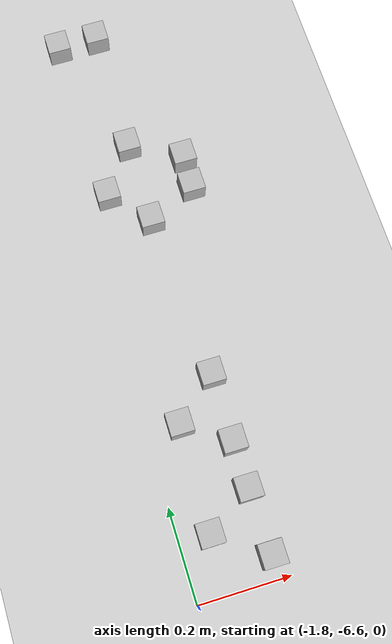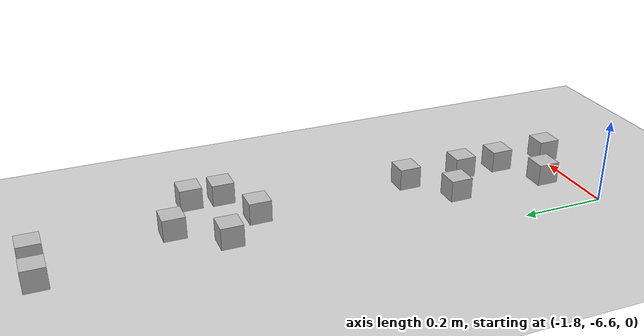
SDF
<sdf version="1.6">
 <world name="default">
  <model name="ground_plane">
   <static>1</static>
   <link name="link">
    <collision name="collision">
     <geometry><plane><normal>0 0 1</normal><size>100 100</size></plane></geometry>
     <surface><friction><ode><mu>100</mu><mu2>50</mu2></ode></friction></surface>
    </collision>
    <visual name="visual">
     <cast_shadows>0</cast_shadows>
     <geometry><plane><normal>0 0 1</normal><size>100 100</size></plane></geometry>
     <material>
      <script><uri>file://media/materials/scripts/gazebo.material</uri><name>Gazebo/Grey</name></script>
     </material>
    </visual>
   </link>
  </model>
  <model name="at0">
   <static>0</static>
   <link name="link">
    <inertial>
     <mass>0.01</mass>
     <inertia><ixx>4e-05</ixx><ixy>0</ixy><ixz>0</ixz><iyy>4e-05</iyy><iyz>0</iyz><izz>4e-05</izz></inertia>
    </inertial>
    <visual name="visual">
     <geometry><box><size>0.05 0.05 0.05</size></box></geometry>
     <material>
      <script>
       <uri>model://at0/materials/scripts</uri>
       <uri>model://at0/materials/textures</uri>
       <name>at0/Diffuse</name>
      </script>
     </material>
    </visual>
    <collision name="collision">
     <geometry><box><size>0.05 0.05 0.05</size></box></geometry>
     <surface><friction><ode><mu>0.8</mu><mu2>0.7</mu2></ode></friction></surface>
    </collision>
   </link>
   <pose>-1.73722 -6.47551 0.074995 3.5e-05 -9e-06 -1.8e-05</pose>
  </model>
  <model name="at0_clone">
   <static>0</static>
   <link name="link">
    <inertial>
     <mass>0.01</mass>
     <inertia><ixx>4e-05</ixx><ixy>0</ixy><ixz>0</ixz><iyy>4e-05</iyy><iyz>0</iyz><izz>4e-05</izz></inertia>
    </inertial>
    <visual name="visual">
     <geometry><box><size>0.05 0.05 0.05</size></box></geometry>
     <material>
      <script>
       <uri>model://at0/materials/scripts</uri>
       <uri>model://at0/materials/textures</uri>
       <name>at0/Diffuse</name>
      </script>
     </material>
    </visual>
    <collision name="collision">
     <geometry><box><size>0.05 0.05 0.05</size></box></geometry>
     <surface><friction><ode><mu>0.8</mu><mu2>0.7</mu2></ode></friction></surface>
    </collision>
   </link>
   <pose>-1.63322 -6.54725 0.074994 -3.5e-05 9e-06 -1.9e-05</pose>
  </model>
  <model name="at0_clone_clone_0">
   <static>0</static>
   <link name="link">
    <inertial>
     <mass>0.01</mass>
     <inertia><ixx>4e-05</ixx><ixy>0</ixy><ixz>0</ixz><iyy>4e-05</iyy><iyz>0</iyz><izz>4e-05</izz></inertia>
    </inertial>
    <visual name="visual">
     <geometry><box><size>0.05 0.05 0.05</size></box></geometry>
     <material>
      <script>
       <uri>model://at0/materials/scripts</uri>
       <uri>model://at0/materials/textures</uri>
       <name>at0/Diffuse</name>
      </script>
     </material>
    </visual>
    <collision name="collision">
     <geometry><box><size>0.05 0.05 0.05</size></box></geometry>
     <surface><friction><ode><mu>0.8</mu><mu2>0.7</mu2></ode></friction></surface>
    </collision>
   </link>
   <pose>-1.63786 -6.41293 0.074995 -3.6e-05 -1.3e-05 -2.4e-05</pose>
  </model>
  <model name="at0_clone_clone_2">
   <static>0</static>
   <link name="link">
    <inertial>
     <mass>0.01</mass>
     <inertia><ixx>4e-05</ixx><ixy>0</ixy><ixz>0</ixz><iyy>4e-05</iyy><iyz>0</iyz><izz>4e-05</izz></inertia>
    </inertial>
    <visual name="visual">
     <geometry><box><size>0.05 0.05 0.05</size></box></geometry>
     <material>
      <script>
       <uri>model://at0/materials/scripts</uri>
       <uri>model://at0/materials/textures</uri>
       <name>at0/Diffuse</name>
      </script>
     </material>
    </visual>
    <collision name="collision">
     <geometry><box><size>0.05 0.05 0.05</size></box></geometry>
     <surface><friction><ode><mu>0.8</mu><mu2>0.7</mu2></ode></friction></surface>
    </collision>
   </link>
   <pose>-1.63786 -6.31398 0.074995 -3.6e-05 -1.3e-05 -2.3e-05</pose>
  </model>
  <model name="at0_clone_clone_3">
   <static>0</static>
   <link name="link">
    <inertial>
     <mass>0.01</mass>
     <inertia><ixx>4e-05</ixx><ixy>0</ixy><ixz>0</ixz><iyy>4e-05</iyy><iyz>0</iyz><izz>4e-05</izz></inertia>
    </inertial>
    <visual name="visual">
     <geometry><box><size>0.05 0.05 0.05</size></box></geometry>
     <material>
      <script>
       <uri>model://at0/materials/scripts</uri>
       <uri>model://at0/materials/textures</uri>
       <name>at0/Diffuse</name>
      </script>
     </material>
    </visual>
    <collision name="collision">
     <geometry><box><size>0.05 0.05 0.05</size></box></geometry>
     <surface><friction><ode><mu>0.8</mu><mu2>0.7</mu2></ode></friction></surface>
    </collision>
   </link>
   <pose>-1.73077 -6.25101 0.074995 3.6e-05 1.3e-05 -2.3e-05</pose>
  </model>
  <model name="at0_clone_clone_4">
   <static>0</static>
   <link name="link">
    <inertial>
     <mass>0.01</mass>
     <inertia><ixx>4e-05</ixx><ixy>0</ixy><ixz>0</ixz><iyy>4e-05</iyy><iyz>0</iyz><izz>4e-05</izz></inertia>
    </inertial>
    <visual name="visual">
     <geometry><box><size>0.05 0.05 0.05</size></box></geometry>
     <material>
      <script>
       <uri>model://at0/materials/scripts</uri>
       <uri>model://at0/materials/textures</uri>
       <name>at0/Diffuse</name>
      </script>
     </material>
    </visual>
    <collision name="collision">
     <geometry><box><size>0.05 0.05 0.05</size></box></geometry>
     <surface><friction><ode><mu>0.8</mu><mu2>0.7</mu2></ode></friction></surface>
    </collision>
   </link>
   <pose>-1.63786 -6.17012 0.074995 -3.6e-05 -1.3e-05 -2.2e-05</pose>
  </model>
  <model name="at0_clone_clone_6">
   <static>0</static>
   <link name="link">
    <inertial>
     <mass>0.01</mass>
     <inertia><ixx>4e-05</ixx><ixy>0</ixy><ixz>0</ixz><iyy>4e-05</iyy><iyz>0</iyz><izz>4e-05</izz></inertia>
    </inertial>
    <visual name="visual">
     <geometry><box><size>0.05 0.05 0.05</size></box></geometry>
     <material>
      <script>
       <uri>model://at0/materials/scripts</uri>
       <uri>model://at0/materials/textures</uri>
       <name>at0/Diffuse</name>
      </script>
     </material>
    </visual>
    <collision name="collision">
     <geometry><box><size>0.05 0.05 0.05</size></box></geometry>
     <surface><friction><ode><mu>0.8</mu><mu2>0.7</mu2></ode></friction></surface>
    </collision>
   </link>
   <pose>-1.73369 -5.72059 0.074995 -3.6e-05 -1.3e-05 -2.1e-05</pose>
  </model>
  <model name="at0_clone_clone_7">
   <static>0</static>
   <link name="link">
    <inertial>
     <mass>0.01</mass>
     <inertia><ixx>4e-05</ixx><ixy>0</ixy><ixz>0</ixz><iyy>4e-05</iyy><iyz>0</iyz><izz>4e-05</izz></inertia>
    </inertial>
    <visual name="visual">
     <geometry><box><size>0.05 0.05 0.05</size></box></geometry>
     <material>
      <script>
       <uri>model://at0/materials/scripts</uri>
       <uri>model://at0/materials/textures</uri>
       <name>at0/Diffuse</name>
      </script>
     </material>
    </visual>
    <collision name="collision">
     <geometry><box><size>0.05 0.05 0.05</size></box></geometry>
     <surface><friction><ode><mu>0.8</mu><mu2>0.7</mu2></ode></friction></surface>
    </collision>
   </link>
   <pose>-1.65875 -5.80452 0.074995 3.6e-05 1.3e-05 -2.1e-05</pose>
  </model>
  <model name="at0_clone_clone_9">
   <static>0</static>
   <link name="link">
    <inertial>
     <mass>0.01</mass>
     <inertia><ixx>4e-05</ixx><ixy>0</ixy><ixz>0</ixz><iyy>4e-05</iyy><iyz>0</iyz><izz>4e-05</izz></inertia>
    </inertial>
    <visual name="visual">
     <geometry><box><size>0.05 0.05 0.05</size></box></geometry>
     <material>
      <script>
       <uri>model://at0/materials/scripts</uri>
       <uri>model://at0/materials/textures</uri>
       <name>at0/Diffuse</name>
      </script>
     </material>
    </visual>
    <collision name="collision">
     <geometry><box><size>0.05 0.05 0.05</size></box></geometry>
     <surface><friction><ode><mu>0.8</mu><mu2>0.7</mu2></ode></friction></surface>
    </collision>
   </link>
   <pose>-1.65871 -5.61868 0.074995 3.6e-05 1.3e-05 -2e-05</pose>
  </model>
  <model name="at0_clone_clone_11">
   <static>0</static>
   <link name="link">
    <inertial>
     <mass>0.01</mass>
     <inertia><ixx>4e-05</ixx><ixy>0</ixy><ixz>0</ixz><iyy>4e-05</iyy><iyz>0</iyz><izz>4e-05</izz></inertia>
    </inertial>
    <visual name="visual">
     <geometry><box><size>0.05 0.05 0.05</size></box></geometry>
     <material>
      <script>
       <uri>model://at0/materials/scripts</uri>
       <uri>model://at0/materials/textures</uri>
       <name>at0/Diffuse</name>
      </script>
     </material>
    </visual>
    <collision name="collision">
     <geometry><box><size>0.05 0.05 0.05</size></box></geometry>
     <surface><friction><ode><mu>0.8</mu><mu2>0.7</mu2></ode></friction></surface>
    </collision>
   </link>
   <pose>-1.55075 -5.75355 0.074994 -3.5e-05 9e-06 -1.8e-05</pose>
  </model>
  <model name="at0_clone_clone_12">
   <static>0</static>
   <link name="link">
    <inertial>
     <mass>0.01</mass>
     <inertia><ixx>4e-05</ixx><ixy>0</ixy><ixz>0</ixz><iyy>4e-05</iyy><iyz>0</iyz><izz>4e-05</izz></inertia>
    </inertial>
    <visual name="visual">
     <geometry><box><size>0.05 0.05 0.05</size></box></geometry>
     <material>
      <script>
       <uri>model://at0/materials/scripts</uri>
       <uri>model://at0/materials/textures</uri>
       <name>at0/Diffuse</name>
      </script>
     </material>
    </visual>
    <collision name="collision">
     <geometry><box><size>0.05 0.05 0.05</size></box></geometry>
     <surface><friction><ode><mu>0.8</mu><mu2>0.7</mu2></ode></friction></surface>
    </collision>
   </link>
   <pose>-1.54799 -5.68163 0.074995 3.5e-05 -9e-06 -1.8e-05</pose>
  </model>
  <model name="at0_clone_clone_13">
   <static>0</static>
   <link name="link">
    <inertial>
     <mass>0.01</mass>
     <inertia><ixx>4e-05</ixx><ixy>0</ixy><ixz>0</ixz><iyy>4e-05</iyy><iyz>0</iyz><izz>4e-05</izz></inertia>
    </inertial>
    <visual name="visual">
     <geometry><box><size>0.05 0.05 0.05</size></box></geometry>
     <material>
      <script>
       <uri>model://at0/materials/scripts</uri>
       <uri>model://at0/materials/textures</uri>
       <name>at0/Diffuse</name>
      </script>
     </material>
    </visual>
    <collision name="collision">
     <geometry><box><size>0.05 0.05 0.05</size></box></geometry>
     <surface><friction><ode><mu>0.8</mu><mu2>0.7</mu2></ode></friction></surface>
    </collision>
   </link>
   <pose>-1.74261 -5.33395 0.074995 -3.6e-05 -1.3e-05 -1.9e-05</pose>
  </model>
  <model name="at0_clone_clone_14">
   <static>0</static>
   <link name="link">
    <inertial>
     <mass>0.01</mass>
     <inertia><ixx>4e-05</ixx><ixy>0</ixy><ixz>0</ixz><iyy>4e-05</iyy><iyz>0</iyz><izz>4e-05</izz></inertia>
    </inertial>
    <visual name="visual">
     <geometry><box><size>0.05 0.05 0.05</size></box></geometry>
     <material>
      <script>
       <uri>model://at0/materials/scripts</uri>
       <uri>model://at0/materials/textures</uri>
       <name>at0/Diffuse</name>
      </script>
     </material>
    </visual>
    <collision name="collision">
     <geometry><box><size>0.05 0.05 0.05</size></box></geometry>
     <surface><friction><ode><mu>0.8</mu><mu2>0.7</mu2></ode></friction></surface>
    </collision>
   </link>
   <pose>-1.6527 -5.33395 0.074995 3.6e-05 1.3e-05 -1.9e-05</pose>
  </model>
 </world>
</sdf>
